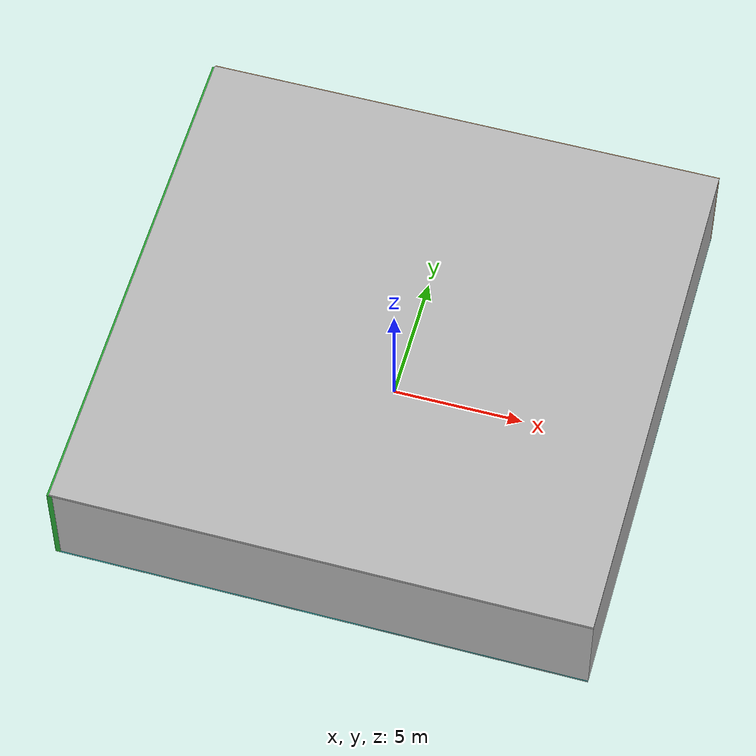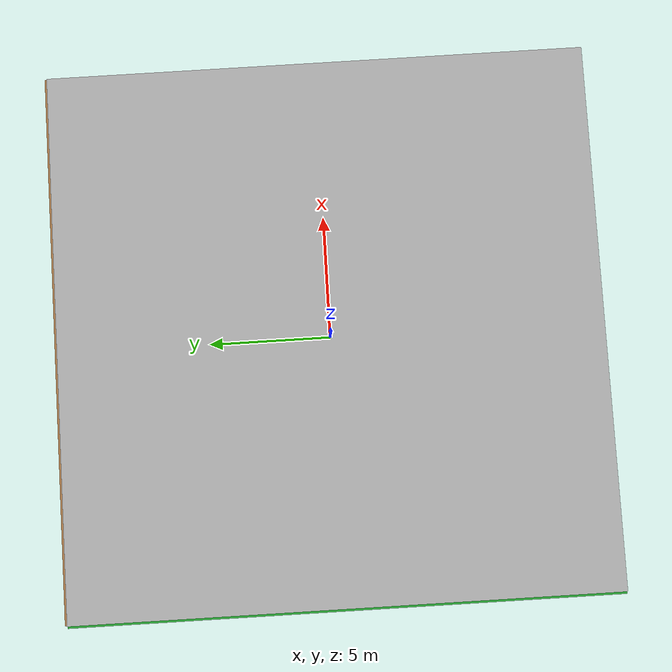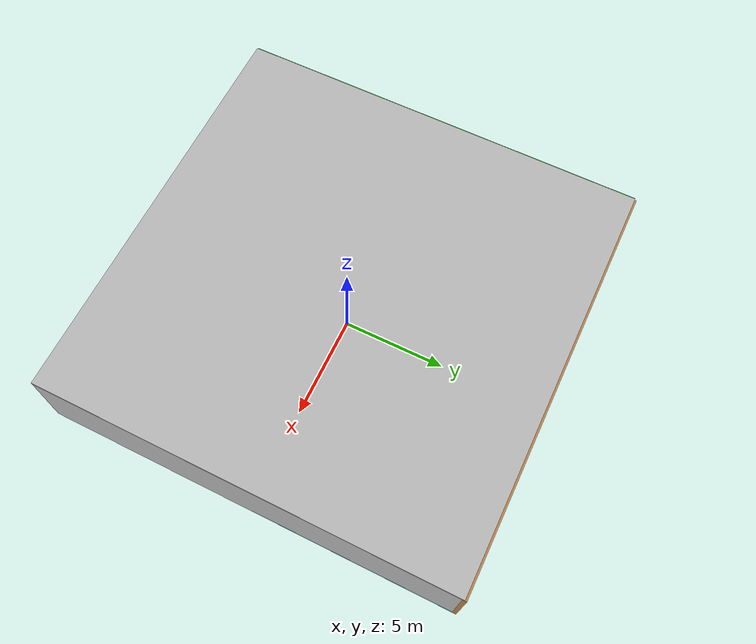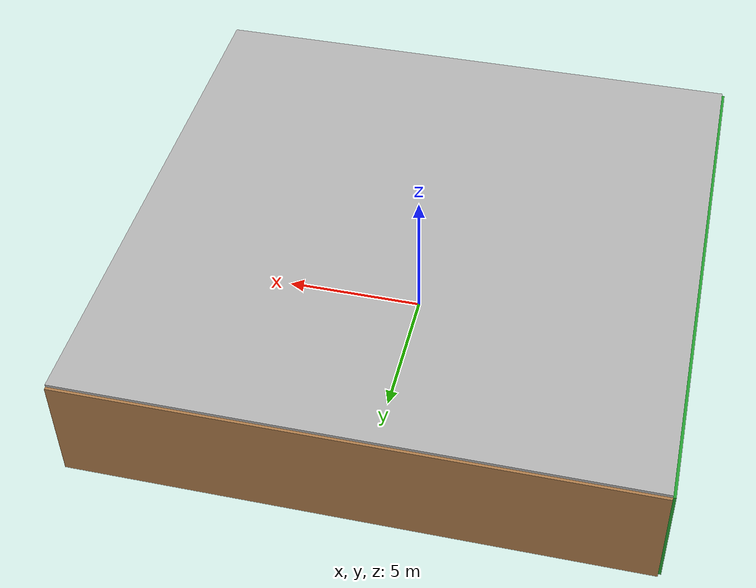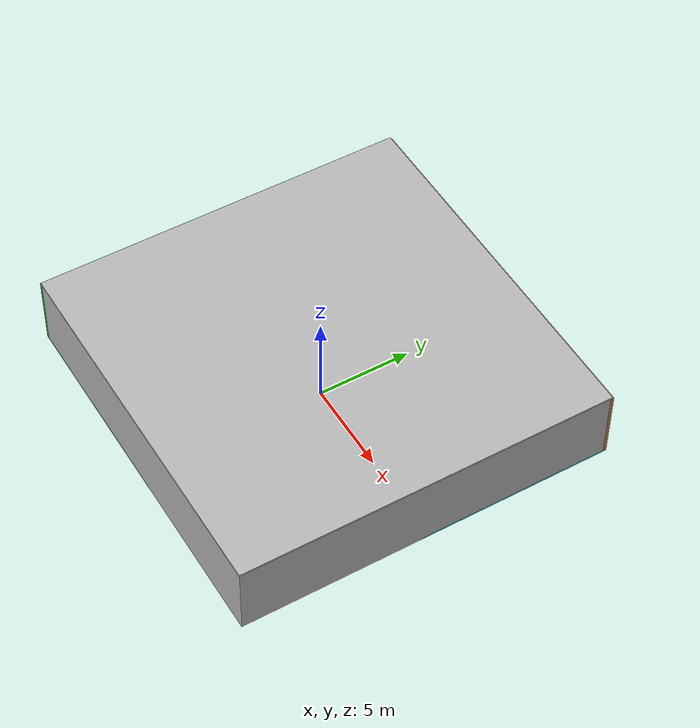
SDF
<sdf version="1.4">
 <world name="default">
  <physics type="ode">
   <max_step_size>0.001</max_step_size>
   <real_time_factor>1</real_time_factor>
   <real_time_update_rate>1000</real_time_update_rate>
   <gravity>0 0 -9.8</gravity>
  </physics>
  <scene><ambient>0.4 0.4 0.4 1</ambient><background>0.7 0.7 0.7 1</background><shadows>1</shadows></scene>
  <model name="Surrounding">
   <static>1</static>
   <link name="Ceiling">
    <collision name="Ceiling_Collision"><geometry><box><size>20 20 0.1</size></box></geometry></collision>
    <visual name="Ceiling_Visual">
     <geometry><box><size>20 20 0.1</size></box></geometry>
     <material>
      <script><uri>file://media/materials/scripts/gazebo.material</uri><name>Gazebo/PioneerBody</name></script>
     </material>
    </visual>
    <pose>0 0 4.05 0 0 0</pose>
   </link>
   <link name="Wall_South">
    <collision name="Wall_South_Collision">
     <geometry><box><size>20 0 4</size></box></geometry>
     <pose>0 0 2 0 -0 0</pose>
    </collision>
    <visual name="Wall_South_Visual">
     <pose>0 0 2 0 -0 0</pose>
     <geometry><box><size>20 0 4</size></box></geometry>
     <material>
      <script><uri>file://media/materials/scripts/gazebo.material</uri><name>Gazebo/CloudySky</name></script>
     </material>
    </visual>
    <velocity_decay><linear>0</linear><angular>0</angular></velocity_decay>
    <pose>0 -10 0 0 -0 0</pose>
   </link>
   <link name="Wall_East">
    <collision name="Wall_21_Collision">
     <geometry><box><size>20 0 4</size></box></geometry>
     <pose>0 0 2 0 -0 0</pose>
    </collision>
    <visual name="Wall_21_Visual">
     <pose>0 0 2 0 -0 0</pose>
     <geometry><box><size>20 0 4</size></box></geometry>
     <material>
      <script><uri>file://media/materials/scripts/gazebo.material</uri><name>Gazebo/CloudySky</name></script>
     </material>
    </visual>
    <velocity_decay><linear>0</linear><angular>0</angular></velocity_decay>
    <pose>10 0 0 0 -0 1.5708</pose>
   </link>
   <link name="Wall_North">
    <collision name="Wall_22_Collision">
     <geometry><box><size>20 0.2 4</size></box></geometry>
     <pose>0 0 2 0 -0 0</pose>
    </collision>
    <visual name="Wall_22_Visual">
     <pose>0 0 2 0 -0 0</pose>
     <geometry><box><size>20 0.2 4</size></box></geometry>
     <material>
      <script><uri>file://media/materials/scripts/gazebo.material</uri><name>Gazebo/Wood</name></script>
     </material>
    </visual>
    <velocity_decay><linear>0</linear><angular>0</angular></velocity_decay>
    <pose>0 10 0 0 -0 0</pose>
   </link>
   <link name="Wall_West">
    <collision name="Wall_23_Collision">
     <geometry><box><size>20 0.2 4</size></box></geometry>
     <pose>0 0 2 0 -0 0</pose>
    </collision>
    <visual name="Wall_23_Visual">
     <pose>0 0 2 0 -0 0</pose>
     <geometry><box><size>20 0.2 4</size></box></geometry>
     <material>
      <script><uri>file://media/materials/scripts/gazebo.material</uri><name>Gazebo/Green</name></script>
     </material>
    </visual>
    <velocity_decay><linear>0</linear><angular>0</angular></velocity_decay>
    <pose>-10 0 0 0 0 -1.5708</pose>
   </link>
   <link name="Ground_link">
    <collision name="collision">
     <pose>0 0 .05 0 -0 0</pose>
     <geometry><box><size>20 20 0.1</size></box></geometry>
    </collision>
    <visual name="visual">
     <pose>0 0 .05 0 -0 0</pose>
     <geometry><box><size>20 20 0.1</size></box></geometry>
     <material>
      <script><uri>file://media/materials/scripts/gazebo.material</uri><name>Gazebo/TurquoiseGlow</name></script>
     </material>
    </visual>
   </link>
   <static>1</static>
  </model>
  <spherical_coordinates>
   <surface_model>EARTH_WGS84</surface_model>
   <latitude_deg>0</latitude_deg>
   <longitude_deg>0</longitude_deg>
   <elevation>0</elevation>
   <heading_deg>0</heading_deg>
  </spherical_coordinates>
  <light name="lightball_0" type="diffuse">
   <diffuse>0.8 0.8 0.8 1</diffuse>
   <specular>0.2 0.2 0.2 1</specular>
   <attenuation>
    <range>100</range>
    <constant>0.7</constant>
    <linear>0.01</linear>
    <quadratic>0.001</quadratic>
   </attenuation>
   <direction>-0.5 0.1 -0.9</direction>
   <pose>-2.98876584959 -5.90289032501 0.617952597738 0 0 0</pose>
  </light>
  <light name="lightball_1" type="diffuse">
   <diffuse>0.8 0.8 0.8 1</diffuse>
   <specular>0.2 0.2 0.2 1</specular>
   <attenuation>
    <range>100</range>
    <constant>0.7</constant>
    <linear>0.01</linear>
    <quadratic>0.001</quadratic>
   </attenuation>
   <direction>-0.5 0.1 -0.9</direction>
   <pose>-3.03635401512 -5.30304370326 2.20838094308 0 0 0</pose>
  </light>
  <light name="lightball_2" type="diffuse">
   <diffuse>0.8 0.8 0.8 1</diffuse>
   <specular>0.2 0.2 0.2 1</specular>
   <attenuation>
    <range>100</range>
    <constant>0.7</constant>
    <linear>0.01</linear>
    <quadratic>0.001</quadratic>
   </attenuation>
   <direction>-0.5 0.1 -0.9</direction>
   <pose>1.16172452646 -7.41990871133 2.29593183022 0 0 0</pose>
  </light>
  <light name="lightball_3" type="diffuse">
   <diffuse>0.8 0.8 0.8 1</diffuse>
   <specular>0.2 0.2 0.2 1</specular>
   <attenuation>
    <range>100</range>
    <constant>0.7</constant>
    <linear>0.01</linear>
    <quadratic>0.001</quadratic>
   </attenuation>
   <direction>-0.5 0.1 -0.9</direction>
   <pose>0.361681509872 -7.07345347038 2.80705051409 0 0 0</pose>
  </light>
  <light name="lightball_4" type="diffuse">
   <diffuse>0.8 0.8 0.8 1</diffuse>
   <specular>0.2 0.2 0.2 1</specular>
   <attenuation>
    <range>100</range>
    <constant>0.7</constant>
    <linear>0.01</linear>
    <quadratic>0.001</quadratic>
   </attenuation>
   <direction>-0.5 0.1 -0.9</direction>
   <pose>-0.288476243081 8.56449426882 2.53968958852 0 0 0</pose>
  </light>
  <light name="lightball_5" type="diffuse">
   <diffuse>0.8 0.8 0.8 1</diffuse>
   <specular>0.2 0.2 0.2 1</specular>
   <attenuation>
    <range>100</range>
    <constant>0.7</constant>
    <linear>0.01</linear>
    <quadratic>0.001</quadratic>
   </attenuation>
   <direction>-0.5 0.1 -0.9</direction>
   <pose>2.56241073683 -3.62205465151 2.79002935685 0 0 0</pose>
  </light>
  <light name="lightball_6" type="diffuse">
   <diffuse>0.8 0.8 0.8 1</diffuse>
   <specular>0.2 0.2 0.2 1</specular>
   <attenuation>
    <range>100</range>
    <constant>0.7</constant>
    <linear>0.01</linear>
    <quadratic>0.001</quadratic>
   </attenuation>
   <direction>-0.5 0.1 -0.9</direction>
   <pose>7.35728738851 7.41696515468 1.71561423071 0 0 0</pose>
  </light>
  <light name="lightball_7" type="diffuse">
   <diffuse>0.8 0.8 0.8 1</diffuse>
   <specular>0.2 0.2 0.2 1</specular>
   <attenuation>
    <range>100</range>
    <constant>0.7</constant>
    <linear>0.01</linear>
    <quadratic>0.001</quadratic>
   </attenuation>
   <direction>-0.5 0.1 -0.9</direction>
   <pose>-9.20817086744 5.49414204983 1.93464760105 0 0 0</pose>
  </light>
  <light name="lightball_8" type="diffuse">
   <diffuse>0.8 0.8 0.8 1</diffuse>
   <specular>0.2 0.2 0.2 1</specular>
   <attenuation>
    <range>100</range>
    <constant>0.7</constant>
    <linear>0.01</linear>
    <quadratic>0.001</quadratic>
   </attenuation>
   <direction>-0.5 0.1 -0.9</direction>
   <pose>-8.28768196647 -0.236665922805 0.558891994577 0 0 0</pose>
  </light>
  <light name="lightball_9" type="diffuse">
   <diffuse>0.8 0.8 0.8 1</diffuse>
   <specular>0.2 0.2 0.2 1</specular>
   <attenuation>
    <range>100</range>
    <constant>0.7</constant>
    <linear>0.01</linear>
    <quadratic>0.001</quadratic>
   </attenuation>
   <direction>-0.5 0.1 -0.9</direction>
   <pose>-7.77083031995 -8.65072699942 1.04762500272 0 0 0</pose>
  </light>
  <light name="lightball_10" type="diffuse">
   <diffuse>0.8 0.8 0.8 1</diffuse>
   <specular>0.2 0.2 0.2 1</specular>
   <attenuation>
    <range>100</range>
    <constant>0.7</constant>
    <linear>0.01</linear>
    <quadratic>0.001</quadratic>
   </attenuation>
   <direction>-0.5 0.1 -0.9</direction>
   <pose>4.92275522623 -0.849934685968 2.42260342405 0 0 0</pose>
  </light>
  <include>
   <uri>model://robocup_3Dsim_goal</uri>
   <pose>-0.866596993689 -8.1471458439 0 0 0 1.31165424268</pose>
  </include>
  <include>
   <uri>model://robocup_3Dsim_goal</uri>
   <pose>-1.3814917802 -4.28560431267 0 0 0 2.4656650454</pose>
  </include>
  <include>
   <uri>model://robocup_3Dsim_goal</uri>
   <pose>-1.42823031073 4.95113203513 0 0 0 3.11345372119</pose>
  </include>
  <include><uri>model://table</uri><pose>0.991054617203 -7.93563978892 0 0 0 1.93941634662</pose></include>
  <include>
   <uri>model://robocup_3Dsim_goal</uri>
   <pose>4.57362476684 6.90272702807 0 0 0 0.755418087079</pose>
  </include>
 </world>
</sdf>

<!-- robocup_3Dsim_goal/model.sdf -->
<sdf version="1.5">
  <model name="robocup_3d_goal">
    <static>true</static>
    <link name="left_post">
      <pose>0 1.05 0.45 0 0 0</pose>
      <collision name="collision">
        <geometry>
          <cylinder>
            <radius>0.05</radius>
            <length>0.9</length>
          </cylinder>
        </geometry>
      </collision>
      <visual name="visual">
        <geometry>
          <cylinder>
            <radius>0.05</radius>
            <length>0.9</length>
          </cylinder>
        </geometry>
        <material>
          <script>
            <uri>file://media/materials/scripts/gazebo.material</uri>
            <name>Gazebo/ZincYellow</name>
          </script>
        </material>
      </visual>
    </link>
    <link name="left_support_horiz_lower">
      <pose>0.30 1.05 0.01 0 0 0</pose>
      <collision name="collision">
        <geometry>
          <box>
            <size>0.50 0.02 0.02</size>
          </box>
        </geometry>
      </collision>
      <visual name="visual">
        <geometry>
          <box>
            <size>0.50 0.02 0.02</size>
          </box>
        </geometry>
        <material>
          <script>
            <uri>file://media/materials/scripts/gazebo.material</uri>
            <name>Gazebo/White</name>
          </script>
        </material>
      </visual>
    </link>
    <link name="left_support_horiz_upper">
      <pose>0.30 1.05 0.79 0 0 0</pose>
      <collision name="collision">
        <geometry>
          <box>
            <size>0.50 0.02 0.02</size>
          </box>
        </geometry>
      </collision>
      <visual name="visual">
        <geometry>
          <box>
            <size>0.50 0.02 0.02</size>
          </box>
        </geometry>
        <material>
          <script>
            <uri>file://media/materials/scripts/gazebo.material</uri>
            <name>Gazebo/White</name>
          </script>
        </material>
      </visual>
    </link>
    <link name="left_support_vertical">
      <pose>0.56 1.05 0.4 0 1.5708 0</pose>
      <collision name="collision">
        <geometry>
          <box>
            <size>0.80 0.02 0.02</size>
          </box>
        </geometry>
      </collision>
      <visual name="visual">
        <geometry>
          <box>
            <size>0.80 0.02 0.02</size>
          </box>
        </geometry>
        <material>
          <script>
            <uri>file://media/materials/scripts/gazebo.material</uri>
            <name>Gazebo/White</name>
          </script>
        </material>
      </visual>
    </link>
    <link name="right_support_horiz_lower">
      <pose>0.30 -1.05 0.01 0 0 0</pose>
      <collision name="collision">
        <geometry>
          <box>
            <size>0.50 0.02 0.02</size>
          </box>
        </geometry>
      </collision>
      <visual name="visual">
        <geometry>
          <box>
            <size>0.50 0.02 0.02</size>
          </box>
        </geometry>
        <material>
          <script>
            <uri>file://media/materials/scripts/gazebo.material</uri>
            <name>Gazebo/White</name>
          </script>
        </material>
      </visual>
    </link>
    <link name="right_support_horiz_upper">
      <pose>0.30 -1.05 0.79 0 0 0</pose>
      <collision name="collision">
        <geometry>
          <box>
            <size>0.50 0.02 0.02</size>
          </box>
        </geometry>
      </collision>
      <visual name="visual">
        <geometry>
          <box>
            <size>0.50 0.02 0.02</size>
          </box>
        </geometry>
        <material>
          <script>
            <uri>file://media/materials/scripts/gazebo.material</uri>
            <name>Gazebo/White</name>
          </script>
        </material>
      </visual>
    </link>
    <link name="right_support_vertical">
      <pose>0.56 -1.05 0.4 0 1.5708 0</pose>
      <collision name="collision">
        <geometry>
          <box>
            <size>0.80 0.02 0.02</size>
          </box>
        </geometry>
      </collision>
      <visual name="visual">
        <geometry>
          <box>
            <size>0.80 0.02 0.02</size>
          </box>
        </geometry>
        <material>
          <script>
            <uri>file://media/materials/scripts/gazebo.material</uri>
            <name>Gazebo/White</name>
          </script>
        </material>
      </visual>
    </link>
    <link name="center_support_horiz_lower">
      <pose>0.56 0 0.01 0 1.5708 0</pose>
      <collision name="collision">
        <geometry>
          <box>
            <size>0.02 2.08 0.02</size>
          </box>
        </geometry>
      </collision>
      <visual name="visual">
        <geometry>
          <box>
            <size>0.02 2.08 0.02</size>
          </box>
        </geometry>
        <material>
          <script>
            <uri>file://media/materials/scripts/gazebo.material</uri>
            <name>Gazebo/White</name>
          </script>
        </material>
      </visual>
    </link>
    <link name="center_support_horiz_upper">
      <pose>0.56 0 0.79 0 1.5708 0</pose>
      <collision name="collision">
        <geometry>
          <box>
            <size>0.02 2.08 0.02</size>
          </box>
        </geometry>
      </collision>
      <visual name="visual">
        <geometry>
          <box>
            <size>0.02 2.08 0.02</size>
          </box>
        </geometry>
        <material>
          <script>
            <uri>file://media/materials/scripts/gazebo.material</uri>
            <name>Gazebo/White</name>
          </script>
        </material>
      </visual>
    </link>
    <link name="right_post">
      <pose>0 -1.05 0.45 0 0 0</pose>
      <collision name="collision">
        <geometry>
          <cylinder>
            <radius>0.05</radius>
            <length>0.9</length>
          </cylinder>
        </geometry>
      </collision>
      <visual name="visual">
        <geometry>
          <cylinder>
            <radius>0.05</radius>
            <length>0.9</length>
          </cylinder>
        </geometry>
        <material>
          <script>
            <uri>file://media/materials/scripts/gazebo.material</uri>
            <name>Gazebo/ZincYellow</name>
          </script>
        </material>
      </visual>
    </link>
    <link name="crossbar">
      <pose>0 0 0.85 1.57 1.57 0</pose>
      <collision name="collision">
        <geometry>
          <cylinder>
            <radius>0.05</radius>
            <length>2.0</length>
          </cylinder>
        </geometry>
      </collision>
      <visual name="visual">
        <geometry>
          <cylinder>
            <radius>0.05</radius>
            <length>2.0</length>
          </cylinder>
        </geometry>
        <material>
          <script>
            <uri>file://media/materials/scripts/gazebo.material</uri>
            <name>Gazebo/ZincYellow</name>
          </script>
        </material>
      </visual>
    </link>
    <link name="center_net">
      <pose>0.56 0 0.40 0 0 0</pose>
      <collision name="collision">
        <geometry>
          <box>
            <size>0.01 2.1 0.80</size>
          </box>
        </geometry>
      </collision>
      <visual name="visual">
        <geometry>
          <box>
            <size>0.01 2.1 0.80</size>
          </box>
        </geometry>
        <material>
          <script>
            <uri>model://../model_source/models/robocup09_spl_field/materials/scripts/</uri>
            <uri>model://../model_source/models/robocup09_spl_field/materials/textures/</uri>
            <name>RoboCup/Net</name>
          </script>
        </material>
      </visual>
    </link>
    <link name="left_net">
      <pose>0.30 1.05 0.40 0 0 0</pose>
      <collision name="collision">
        <geometry>
          <box>
            <size>0.50 0.01 0.76</size>
          </box>
        </geometry>
      </collision>
      <visual name="visual">
        <geometry>
          <box>
            <size>0.50 0.01 0.76</size>
          </box>
        </geometry>
        <material>
          <script>
            <uri>model://../model_source/models/robocup09_spl_field/materials/scripts/</uri>
            <uri>model://../model_source/models/robocup09_spl_field/materials/textures/</uri>
            <name>RoboCup/Net</name>
          </script>
        </material>
      </visual>
    </link>
    <link name="right_net">
      <pose>0.30 -1.05 0.40 0 0 0</pose>
      <collision name="collision">
        <geometry>
          <box>
            <size>0.50 0.01 0.76</size>
          </box>
        </geometry>
      </collision>
      <visual name="visual">
        <geometry>
          <box>
            <size>0.50 0.01 0.76</size>
          </box>
        </geometry>
        <material>
          <script>
            <uri>model://../model_source/models/robocup09_spl_field/materials/scripts/</uri>
            <uri>model://../model_source/models/robocup09_spl_field/materials/textures/</uri>
            <name>RoboCup/Net</name>
          </script>
        </material>
      </visual>
    </link>
  </model>
</sdf>

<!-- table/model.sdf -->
<sdf version="1.5">
  <model name="table">
    <static>true</static>
    <link name="link">
      <collision name="surface">
        <pose>0 0 1.0 0 0 0</pose>
        <geometry>
          <box>
            <size>1.5 0.8 0.03</size>
          </box>
        </geometry>
        <surface>
          <friction>
            <ode>
              <mu>0.6</mu>
              <mu2>0.6</mu2>
            </ode>
          </friction>
        </surface>
      </collision>
      <visual name="visual1">
        <pose>0 0 1.0 0 0 0</pose>
        <geometry>
          <box>
            <size>1.5 0.8 0.03</size>
          </box>
        </geometry>
        <material>
          <script>
            <uri>model://media/materials/scripts/gazebo.material</uri>
            <name>Gazebo/Wood</name>
          </script>
        </material>
      </visual>
      <collision name="front_left_leg">
        <pose>0.68 0.38 0.5 0 0 0</pose>
        <geometry>
          <cylinder>
            <radius>0.02</radius>
            <length>1.0</length>
          </cylinder>
        </geometry>
      </collision>
      <visual name="front_left_leg">
        <pose>0.68 0.38 0.5 0 0 0</pose>
        <geometry>
          <cylinder>
            <radius>0.02</radius>
            <length>1.0</length>
          </cylinder>
        </geometry>
        <material>
          <script>
            <uri>model://media/materials/scripts/gazebo.material</uri>
            <name>Gazebo/Grey</name>
          </script>
        </material>
      </visual>
      <collision name="front_right_leg">
        <pose>0.68 -0.38 0.5 0 0 0</pose>
        <geometry>
          <cylinder>
            <radius>0.02</radius>
            <length>1.0</length>
          </cylinder>
        </geometry>
      </collision>
      <visual name="front_right_leg">
        <pose>0.68 -0.38 0.5 0 0 0</pose>
        <geometry>
          <cylinder>
            <radius>0.02</radius>
            <length>1.0</length>
          </cylinder>
        </geometry>
        <material>
          <script>
            <uri>model://media/materials/scripts/gazebo.material</uri>
            <name>Gazebo/Grey</name>
          </script>
        </material>
      </visual>
      <collision name="back_right_leg">
        <pose>-0.68 -0.38 0.5 0 0 0</pose>
        <geometry>
          <cylinder>
            <radius>0.02</radius>
            <length>1.0</length>
          </cylinder>
        </geometry>
      </collision>
      <visual name="back_right_leg">
        <pose>-0.68 -0.38 0.5 0 0 0</pose>
        <geometry>
          <cylinder>
            <radius>0.02</radius>
            <length>1.0</length>
          </cylinder>
        </geometry>
        <material>
          <script>
            <uri>model://media/materials/scripts/gazebo.material</uri>
            <name>Gazebo/Grey</name>
          </script>
        </material>
      </visual>
      <collision name="back_left_leg">
        <pose>-0.68 0.38 0.5 0 0 0</pose>
        <geometry>
          <cylinder>
            <radius>0.02</radius>
            <length>1.0</length>
          </cylinder>
        </geometry>
      </collision>
      <visual name="back_left_leg">
        <pose>-0.68 0.38 0.5 0 0 0</pose>
        <geometry>
          <cylinder>
            <radius>0.02</radius>
            <length>1.0</length>
          </cylinder>
        </geometry>
        <material>
          <script>
            <uri>model://media/materials/scripts/gazebo.material</uri>
            <name>Gazebo/Grey</name>
          </script>
        </material>
      </visual>
    </link>
  </model>
</sdf>
